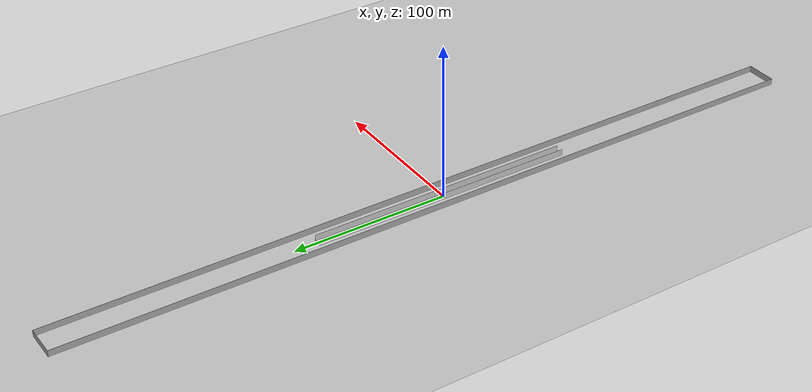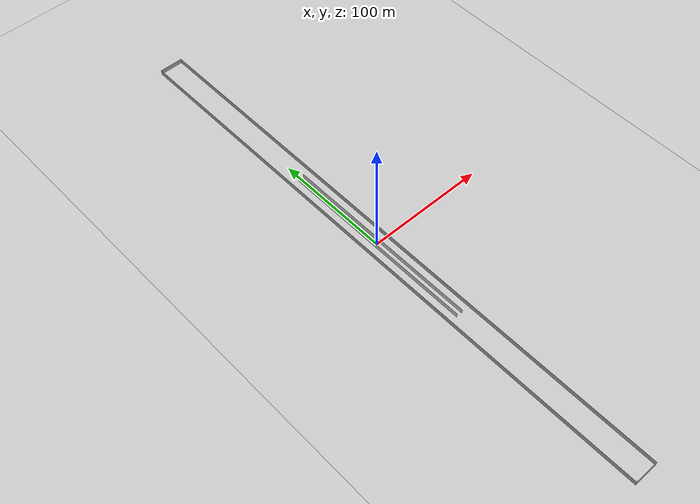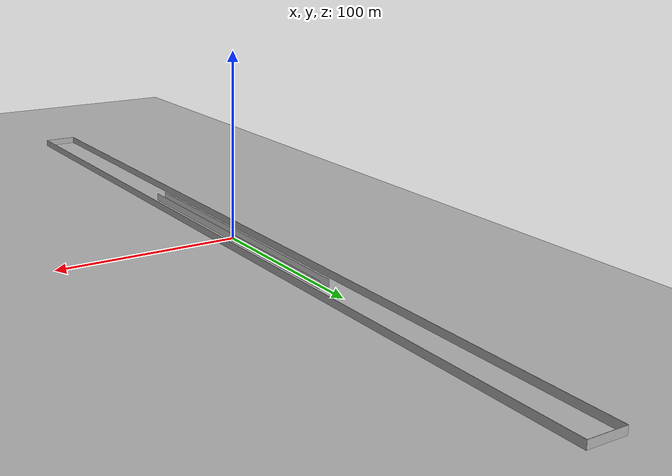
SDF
<sdf version="1.4">
 <world name="default">
  <light name="sun" type="directional">
   <pose>0 0 10 0 -0 0</pose>
   <diffuse>0.8 0.8 0.8 1</diffuse>
   <specular>0.2 0.2 0.2 1</specular>
   <attenuation>
    <range>1000</range>
    <constant>0.9</constant>
    <linear>0.01</linear>
    <quadratic>0.001</quadratic>
   </attenuation>
   <direction>-0.5 0.1 -0.9</direction>
  </light>
  <model name="wall_w">
   <static>1</static>
   <pose>-2.5 0 2 0 -0 0</pose>
   <link name="link">
    <collision name="collision"><geometry><box><size>0.2 170 4</size></box></geometry></collision>
    <visual name="visual">
     <geometry><box><size>0.2 170 4</size></box></geometry>
     <material>
      <script><uri>file://media/materials/scripts/gazebo.material</uri><name>Gazebo/Brick</name></script>
     </material>
    </visual>
    <velocity_decay><linear>0</linear><angular>0</angular></velocity_decay>
   </link>
  </model>
  <model name="wall_e">
   <static>1</static>
   <pose>2.5 0 2 -0 -0 -0</pose>
   <link name="link">
    <collision name="collision"><geometry><box><size>0.2 170 4</size></box></geometry></collision>
    <visual name="visual">
     <geometry><box><size>0.2 170 4</size></box></geometry>
     <material>
      <script><uri>file://media/materials/scripts/gazebo.material</uri><name>Gazebo/Brick</name></script>
     </material>
    </visual>
    <velocity_decay><linear>0</linear><angular>0</angular></velocity_decay>
   </link>
  </model>
  <model name="ground_plane">
   <static>1</static>
   <link name="link">
    <collision name="collision">
     <geometry><plane><normal>0 0 1</normal><size>20 500</size></plane></geometry>
     <surface><friction><ode><mu>100</mu><mu2>50</mu2></ode></friction></surface>
    </collision>
    <visual name="visual">
     <cast_shadows>0</cast_shadows>
     <geometry><plane><normal>0 0 1</normal><size>20 500</size></plane></geometry>
     <material>
      <script><uri>file://media/materials/scripts/gazebo.material</uri><name>Gazebo/Grey</name></script>
     </material>
    </visual>
    <velocity_decay><linear>0</linear><angular>0</angular></velocity_decay>
   </link>
  </model>
  <physics type="ode">
   <max_step_size>0.001</max_step_size>
   <real_time_factor>1</real_time_factor>
   <real_time_update_rate>1000</real_time_update_rate>
   <gravity>0 0 -9.8</gravity>
  </physics>
  <scene><ambient>0.4 0.4 0.4 1</ambient><background>0.7 0.7 0.7 1</background><shadows>1</shadows></scene>
  <model name="challenge_w1_0">
   <static>1</static>
   <link name="Wall_South">
    <collision name="Wall_South_Collision">
     <geometry><box><size>20 0.2 4</size></box></geometry>
     <pose>0 0 2 0 -0 0</pose>
    </collision>
    <visual name="Wall_South_Visual">
     <pose>0 0 2 0 -0 0</pose>
     <geometry><box><size>20 0.2 4</size></box></geometry>
     <material>
      <script><uri>file://media/materials/scripts/gazebo.material</uri><name>Gazebo/Grey</name></script>
     </material>
    </visual>
    <velocity_decay><linear>0</linear><angular>0</angular></velocity_decay>
    <pose>0 -250 0 0 -0 0</pose>
   </link>
   <link name="Wall_East">
    <collision name="Wall_21_Collision">
     <geometry><box><size>500 0.2 4</size></box></geometry>
     <pose>0 0 2 0 -0 0</pose>
    </collision>
    <visual name="Wall_21_Visual">
     <pose>0 0 2 0 -0 0</pose>
     <geometry><box><size>500 0.2 4</size></box></geometry>
     <material>
      <script><uri>file://media/materials/scripts/gazebo.material</uri><name>Gazebo/Grey</name></script>
     </material>
    </visual>
    <velocity_decay><linear>0</linear><angular>0</angular></velocity_decay>
    <pose>10 0 0 0 -0 1.5708</pose>
   </link>
   <link name="Wall_North">
    <collision name="Wall_22_Collision">
     <geometry><box><size>20 0.2 4</size></box></geometry>
     <pose>0 0 2 0 -0 0</pose>
    </collision>
    <visual name="Wall_22_Visual">
     <pose>0 0 2 0 -0 0</pose>
     <geometry><box><size>20 0.2 4</size></box></geometry>
     <material>
      <script><uri>file://media/materials/scripts/gazebo.material</uri><name>Gazebo/Grey</name></script>
     </material>
    </visual>
    <velocity_decay><linear>0</linear><angular>0</angular></velocity_decay>
    <pose>0 250 0 0 -0 3.14159</pose>
   </link>
   <link name="Wall_West">
    <collision name="Wall_23_Collision">
     <geometry><box><size>500 0.2 4</size></box></geometry>
     <pose>0 0 2 0 -0 0</pose>
    </collision>
    <visual name="Wall_23_Visual">
     <pose>0 0 2 0 -0 0</pose>
     <geometry><box><size>500 0.2 4</size></box></geometry>
     <material>
      <script><uri>file://media/materials/scripts/gazebo.material</uri><name>Gazebo/Grey</name></script>
     </material>
    </visual>
    <velocity_decay><linear>0</linear><angular>0</angular></velocity_decay>
    <pose>-10 0 0 0 0 -1.5708</pose>
   </link>
   <static>1</static>
  </model>
 </world>
</sdf>
